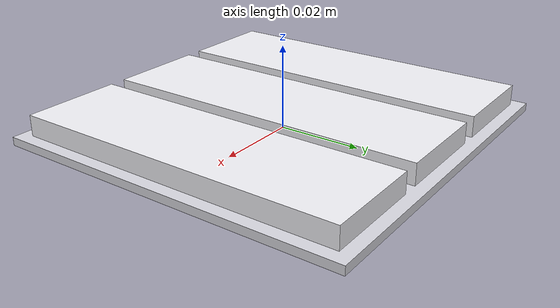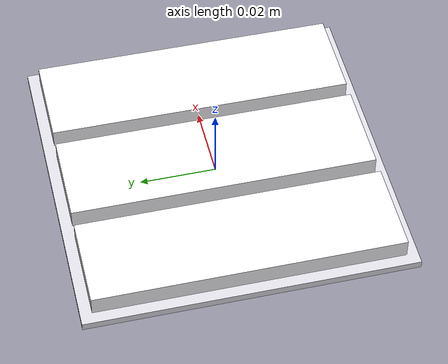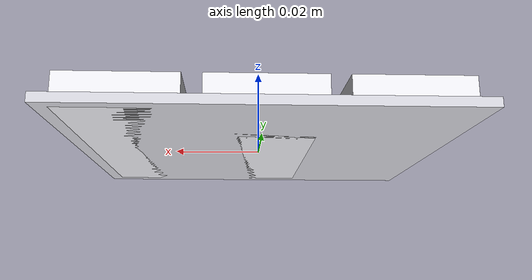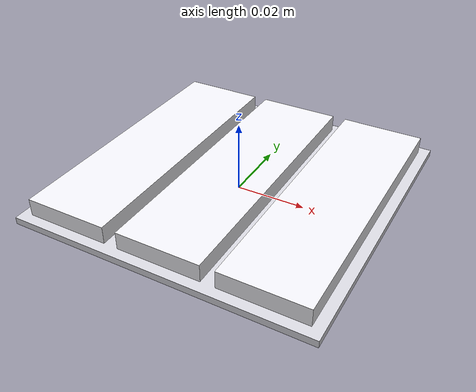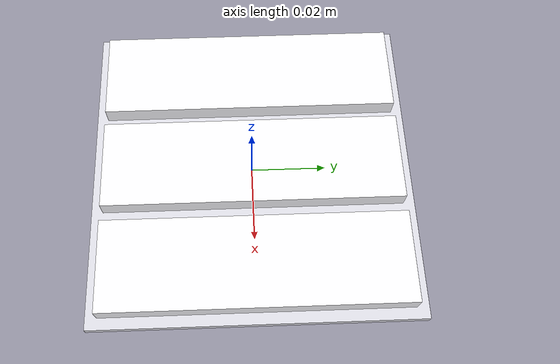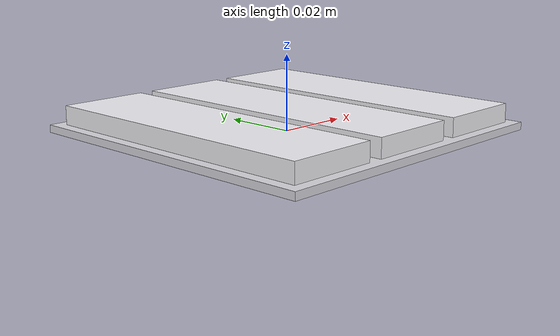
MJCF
<mujoco model="Switch_Quantity3_02">
  <asset>
    <material name="Switch_Quantity3_02_bezel" rgba="0.85 0.85 0.88 1" specular="0.85" shininess="0.9"/>
    <material name="Switch_Quantity3_02_btn1" rgba="0.95 0.95 0.97 1" specular="0.85" shininess="0.9"/>
    <material name="Switch_Quantity3_02_btn2" rgba="0.95 0.95 0.97 1" specular="0.85" shininess="0.9"/>
    <material name="Switch_Quantity3_02_btn3" rgba="0.95 0.95 0.97 1" specular="0.85" shininess="0.9"/>
  </asset>
  <worldbody>
    <body name="Switch_Quantity3_02">
      <geom name="Switch_Quantity3_02_bezel" type="box"
            pos="0 0 0.001" size="0.043 0.043 0.001"
            material="Switch_Quantity3_02_bezel"/>
      <geom name="Switch_Quantity3_02_btn1" type="box"
            pos="-0.028 0 0.0035" size="0.012 0.04 0.0035"
            material="Switch_Quantity3_02_btn1"/>
      <geom name="Switch_Quantity3_02_btn2" type="box"
            pos="0 0 0.0035" size="0.012 0.04 0.0035"
            material="Switch_Quantity3_02_btn2"/>
      <geom name="Switch_Quantity3_02_btn3" type="box"
            pos="0.028 0 0.0035" size="0.012 0.04 0.0035"
            material="Switch_Quantity3_02_btn3"/>
    </body>
  </worldbody>
</mujoco>
